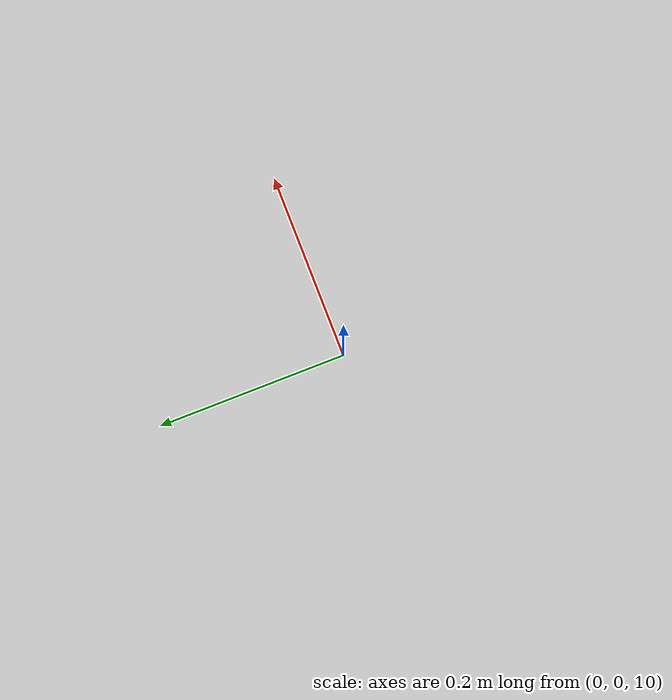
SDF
<?xml version="1.0" encoding="UTF-8"?>
<sdf version="1.9">
  <world name="aruco_upward">
    <physics type="ode">
      <max_step_size>0.004</max_step_size>
      <real_time_factor>1.0</real_time_factor>
      <real_time_update_rate>250</real_time_update_rate>
    </physics>
    <plugin name="gz::sim::systems::Physics" filename="gz-sim-physics-system"/>
    <plugin name="gz::sim::systems::UserCommands" filename="gz-sim-user-commands-system"/>
    <plugin name="gz::sim::systems::SceneBroadcaster" filename="gz-sim-scene-broadcaster-system"/>
    <plugin name="gz::sim::systems::Contact" filename="gz-sim-contact-system"/>
    <plugin name="gz::sim::systems::Imu" filename="gz-sim-imu-system"/>
    <plugin name="gz::sim::systems::AirPressure" filename="gz-sim-air-pressure-system"/>
    <plugin name="gz::sim::systems::ApplyLinkWrench" filename="gz-sim-apply-link-wrench-system"/>
    <plugin name="gz::sim::systems::NavSat" filename="gz-sim-navsat-system"/>
    <plugin name="gz::sim::systems::Sensors" filename="gz-sim-sensors-system">
      <render_engine>ogre2</render_engine>
    </plugin>
    <plugin name="custom::OpticalFlowSystem" filename="libOpticalFlowSystem.so" />
    <gui fullscreen="false">
      <!-- 3D scene -->
      <plugin filename="MinimalScene" name="3D View">
        <gz-gui>
          <title>3D View</title>
          <property type="bool" key="showTitleBar">false</property>
          <property type="string" key="state">docked</property>
        </gz-gui>
        <engine>ogre2</engine>
        <scene>scene</scene>
        <ambient_light>0.4 0.4 0.4</ambient_light>
        <background_color>0.8 0.8 0.8</background_color>
        <camera_pose>-6 0 6 0 0.5 0</camera_pose>
        <camera_clip>
          <near>0.25</near>
          <far>25000</far>
        </camera_clip>
      </plugin>
      <!-- Plugins that add functionality to the scene -->
      <plugin filename="EntityContextMenuPlugin" name="Entity context menu">
        <gz-gui>
          <property key="state" type="string">floating</property>
          <property key="width" type="double">5</property>
          <property key="height" type="double">5</property>
          <property key="showTitleBar" type="bool">false</property>
        </gz-gui>
      </plugin>
      <plugin filename="GzSceneManager" name="Scene Manager">
        <gz-gui>
          <property key="resizable" type="bool">false</property>
          <property key="width" type="double">5</property>
          <property key="height" type="double">5</property>
          <property key="state" type="string">floating</property>
          <property key="showTitleBar" type="bool">false</property>
        </gz-gui>
      </plugin>
      <plugin filename="InteractiveViewControl" name="Interactive view control">
        <gz-gui>
          <property key="resizable" type="bool">false</property>
          <property key="width" type="double">5</property>
          <property key="height" type="double">5</property>
          <property key="state" type="string">floating</property>
          <property key="showTitleBar" type="bool">false</property>
        </gz-gui>
      </plugin>
      <plugin filename="CameraTracking" name="Camera Tracking">
        <gz-gui>
          <property key="resizable" type="bool">false</property>
          <property key="width" type="double">5</property>
          <property key="height" type="double">5</property>
          <property key="state" type="string">floating</property>
          <property key="showTitleBar" type="bool">false</property>
        </gz-gui>
      </plugin>
      <plugin filename="MarkerManager" name="Marker manager">
        <gz-gui>
          <property key="resizable" type="bool">false</property>
          <property key="width" type="double">5</property>
          <property key="height" type="double">5</property>
          <property key="state" type="string">floating</property>
          <property key="showTitleBar" type="bool">false</property>
        </gz-gui>
      </plugin>
      <plugin filename="SelectEntities" name="Select Entities">
        <gz-gui>
          <anchors target="Select entities">
            <line own="right" target="right"/>
            <line own="top" target="top"/>
          </anchors>
          <property key="resizable" type="bool">false</property>
          <property key="width" type="double">5</property>
          <property key="height" type="double">5</property>
          <property key="state" type="string">floating</property>
          <property key="showTitleBar" type="bool">false</property>
        </gz-gui>
      </plugin>
      <plugin filename="VisualizationCapabilities" name="Visualization Capabilities">
        <gz-gui>
          <property key="resizable" type="bool">false</property>
          <property key="width" type="double">5</property>
          <property key="height" type="double">5</property>
          <property key="state" type="string">floating</property>
          <property key="showTitleBar" type="bool">false</property>
        </gz-gui>
      </plugin>
      <plugin filename="Spawn" name="Spawn Entities">
        <gz-gui>
          <anchors target="Select entities">
            <line own="right" target="right"/>
            <line own="top" target="top"/>
          </anchors>
          <property key="resizable" type="bool">false</property>
          <property key="width" type="double">5</property>
          <property key="height" type="double">5</property>
          <property key="state" type="string">floating</property>
          <property key="showTitleBar" type="bool">false</property>
        </gz-gui>
      </plugin>
      <plugin name="World control" filename="WorldControl">
        <gz-gui>
          <title>World control</title>
          <property type="bool" key="showTitleBar">0</property>
          <property type="bool" key="resizable">0</property>
          <property type="double" key="height">72</property>
          <property type="double" key="width">121</property>
          <property type="double" key="z">1</property>
          <property type="string" key="state">floating</property>
          <anchors target="3D View">
            <line own="left" target="left"/>
            <line own="bottom" target="bottom"/>
          </anchors>
        </gz-gui>
        <play_pause>1</play_pause>
        <step>1</step>
        <start_paused>1</start_paused>
      </plugin>
      <plugin name="World stats" filename="WorldStats">
        <gz-gui>
          <title>World stats</title>
          <property type="bool" key="showTitleBar">0</property>
          <property type="bool" key="resizable">0</property>
          <property type="double" key="height">110</property>
          <property type="double" key="width">290</property>
          <property type="double" key="z">1</property>
          <property type="string" key="state">floating</property>
          <anchors target="3D View">
            <line own="right" target="right"/>
            <line own="bottom" target="bottom"/>
          </anchors>
        </gz-gui>
        <sim_time>1</sim_time>
        <real_time>1</real_time>
        <real_time_factor>1</real_time_factor>
        <iterations>1</iterations>
      </plugin>
      <plugin name="Entity tree" filename="EntityTree"/>
    </gui>
    <gravity>0 0 -9.8</gravity>
    <magnetic_field>6e-06 2.3e-05 -4.2e-05</magnetic_field>
    <atmosphere type="adiabatic"/>
    <scene>
      <grid>false</grid>
      <ambient>0.4 0.4 0.4 1</ambient>
      <background>0.7 0.7 0.7 1</background>
      <shadows>true</shadows>
    </scene>
    <model name="ground_plane">
      <static>true</static>
      <link name="link">
        <collision name="collision">
          <geometry>
            <plane>
              <normal>0 0 1</normal>
              <size>1 1</size>
            </plane>
          </geometry>
          <surface>
            <friction>
              <ode/>
            </friction>
            <bounce/>
            <contact/>
          </surface>
        </collision>
        <visual name="visual">
          <geometry>
            <plane>
              <normal>0 0 1</normal>
              <size>50 50</size>
            </plane>
          </geometry>
          <material>
            <ambient>0.8 0.8 0.8 1</ambient>
            <diffuse>0.8 0.8 0.8 1</diffuse>
            <specular>0.8 0.8 0.8 1</specular>
            <pbr>
              <metal>
                <albedo_map>model://arucotag/tiled_meseeks_small.png</albedo_map>
              </metal>
            </pbr>
          </material>
        </visual>
        <pose>0 0 0 0 -0 0</pose>
        <inertial>
          <pose>0 0 0 0 -0 0</pose>
          <mass>1</mass>
          <inertia>
            <ixx>1</ixx>
            <ixy>0</ixy>
            <ixz>0</ixz>
            <iyy>1</iyy>
            <iyz>0</iyz>
            <izz>1</izz>
          </inertia>
        </inertial>
        <enable_wind>false</enable_wind>
      </link>
      <pose>0 0 0 0 -0 0</pose>
      <self_collide>false</self_collide>
    </model>
    <model name="ceiling_plane">
      <static>true</static>
      <link name="link">
        <collision name="collision">
          <geometry>
            <plane>
              <normal>0 0 1</normal>
              <size>1 1</size>
            </plane>
          </geometry>
          <surface>
            <friction>
              <ode/>
            </friction>
            <bounce/>
            <contact/>
          </surface>
        </collision>
        <visual name="visual">
          <geometry>
            <plane>
              <normal>0 0 1</normal>
              <size>50 50</size>
            </plane>
          </geometry>
          <material>
            <ambient>0.8 0.8 0.8 1</ambient>
            <diffuse>0.8 0.8 0.8 1</diffuse>
            <specular>0.8 0.8 0.8 1</specular>
            <pbr>
              <metal>
                <albedo_map>model://arucotag/tiled_meseeks_small.png</albedo_map>
              </metal>
            </pbr>
          </material>
        </visual>
        <pose>0 0 0 0 -0 0</pose>
        <inertial>
          <pose>0 0 0 0 -0 0</pose>
          <mass>1</mass>
          <inertia>
            <ixx>1</ixx>
            <ixy>0</ixy>
            <ixz>0</ixz>
            <iyy>1</iyy>
            <iyz>0</iyz>
            <izz>1</izz>
          </inertia>
        </inertial>
        <enable_wind>false</enable_wind>
      </link>
      <pose>0 0 10 3.14 -0 0</pose>
      <self_collide>false</self_collide>
    </model>
    <light name="sunUTC" type="directional">
      <pose>0 0 500 0 -0 0</pose>
      <cast_shadows>true</cast_shadows>
      <intensity>1</intensity>
      <direction>0.001 0.625 -0.78</direction>
      <diffuse>0.904 0.904 0.904 1</diffuse>
      <specular>0.271 0.271 0.271 1</specular>
      <attenuation>
        <range>2000</range>
        <linear>0</linear>
        <constant>1</constant>
        <quadratic>0</quadratic>
      </attenuation>
      <spot>
        <inner_angle>0</inner_angle>
        <outer_angle>0</outer_angle>
        <falloff>0</falloff>
      </spot>
    </light>
    <spherical_coordinates>
      <surface_model>EARTH_WGS84</surface_model>
      <world_frame_orientation>ENU</world_frame_orientation>
      <latitude_deg>47.397971057728974</latitude_deg>
      <longitude_deg> 8.546163739800146</longitude_deg>
      <elevation>0</elevation>
    </spherical_coordinates>

    <include>
      <uri>model://arucotag</uri>
      <pose>0 0 10 3.14 0 0 </pose>
    </include>
  </world>
</sdf>

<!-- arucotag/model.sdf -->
<sdf version='1.9'>
  <model name='arucotag'>
    <static>true</static>
    <pose>0 0 0.001 0 0 0</pose>
    <link name='base'>
      <visual name='background_visual'>
        <geometry>
          <plane>
            <normal>0 0 1</normal>
            <size>0.5 0.5</size>
          </plane>
        </geometry>
        <material>
          <diffuse>1 1 1 1</diffuse>
          <specular>0.2 0.2 0.2 1</specular>
        </material>
      </visual>
      <visual name='tag_0_visual'>
        <pose>0.17 0.17 0.0002 0 0 0</pose>
        <geometry>
          <plane>
            <normal>0 0 1</normal>
            <size>0.14 0.14</size>
          </plane>
        </geometry>
        <material>
          <diffuse>1 1 1 1</diffuse>
          <specular>0.4 0.4 0.4 1</specular>
          <pbr>
            <metal>
              <albedo_map>model://arucotag/aruco_0.png</albedo_map>
            </metal>
          </pbr>
        </material>
      </visual>
      <visual name='tag_1_visual'>
        <pose>-0.17 0.17 0.0002 0 0 0</pose>
        <geometry>
          <plane>
            <normal>0 0 1</normal>
            <size>0.14 0.14</size>
          </plane>
        </geometry>
        <material>
          <diffuse>1 1 1 1</diffuse>
          <specular>0.4 0.4 0.4 1</specular>
          <pbr>
            <metal>
              <albedo_map>model://arucotag/aruco_1.png</albedo_map>
            </metal>
          </pbr>
        </material>
      </visual>
      <visual name='tag_2_visual'>
        <pose>-0.17 -0.17 0.0002 0 0 0</pose>
        <geometry>
          <plane>
            <normal>0 0 1</normal>
            <size>0.14 0.14</size>
          </plane>
        </geometry>
        <material>
          <diffuse>1 1 1 1</diffuse>
          <specular>0.4 0.4 0.4 1</specular>
          <pbr>
            <metal>
              <albedo_map>model://arucotag/aruco_2.png</albedo_map>
            </metal>
          </pbr>
        </material>
      </visual>
      <visual name='tag_3_visual'>
        <pose>0.17 -0.17 0.0002 0 0 0</pose>
        <geometry>
          <plane>
            <normal>0 0 1</normal>
            <size>0.14 0.14</size>
          </plane>
        </geometry>
        <material>
          <diffuse>1 1 1 1</diffuse>
          <specular>0.4 0.4 0.4 1</specular>
          <pbr>
            <metal>
              <albedo_map>model://arucotag/aruco_3.png</albedo_map>
            </metal>
          </pbr>
        </material>
      </visual>
      <visual name='tag_4_visual'>
        <pose>0.0 0.11 0.0002 0 0 0</pose>
        <geometry>
          <plane>
            <normal>0 0 1</normal>
            <size>0.07 0.07</size>
          </plane>
        </geometry>
        <material>
          <diffuse>1 1 1 1</diffuse>
          <specular>0.4 0.4 0.4 1</specular>
          <pbr>
            <metal>
              <albedo_map>model://arucotag/aruco_4.png</albedo_map>
            </metal>
          </pbr>
        </material>
      </visual>
      <visual name='tag_5_visual'>
        <pose>-0.11 0.0 0.0002 0 0 0</pose>
        <geometry>
          <plane>
            <normal>0 0 1</normal>
            <size>0.07 0.07</size>
          </plane>
        </geometry>
        <material>
          <diffuse>1 1 1 1</diffuse>
          <specular>0.4 0.4 0.4 1</specular>
          <pbr>
            <metal>
              <albedo_map>model://arucotag/aruco_5.png</albedo_map>
            </metal>
          </pbr>
        </material>
      </visual>
      <visual name='tag_6_visual'>
        <pose>0.0 -0.11 0.0002 0 0 0</pose>
        <geometry>
          <plane>
            <normal>0 0 1</normal>
            <size>0.07 0.07</size>
          </plane>
        </geometry>
        <material>
          <diffuse>1 1 1 1</diffuse>
          <specular>0.4 0.4 0.4 1</specular>
          <pbr>
            <metal>
              <albedo_map>model://arucotag/aruco_6.png</albedo_map>
            </metal>
          </pbr>
        </material>
      </visual>
      <visual name='tag_7_visual'>
        <pose>0.11 0.0 0.0002 0 0 0</pose>
        <geometry>
          <plane>
            <normal>0 0 1</normal>
            <size>0.07 0.07</size>
          </plane>
        </geometry>
        <material>
          <diffuse>1 1 1 1</diffuse>
          <specular>0.4 0.4 0.4 1</specular>
          <pbr>
            <metal>
              <albedo_map>model://arucotag/aruco_7.png</albedo_map>
            </metal>
          </pbr>
        </material>
      </visual>
      <visual name='tag_8_visual'>
        <pose>0.0 0.045 0.0002 0 0 0</pose>
        <geometry>
          <plane>
            <normal>0 0 1</normal>
            <size>0.025 0.025</size>
          </plane>
        </geometry>
        <material>
          <diffuse>1 1 1 1</diffuse>
          <specular>0.4 0.4 0.4 1</specular>
          <pbr>
            <metal>
              <albedo_map>model://arucotag/aruco_8.png</albedo_map>
            </metal>
          </pbr>
        </material>
      </visual>
      <visual name='tag_9_visual'>
        <pose>-0.045 0.0 0.0002 0 0 0</pose>
        <geometry>
          <plane>
            <normal>0 0 1</normal>
            <size>0.025 0.025</size>
          </plane>
        </geometry>
        <material>
          <diffuse>1 1 1 1</diffuse>
          <specular>0.4 0.4 0.4 1</specular>
          <pbr>
            <metal>
              <albedo_map>model://arucotag/aruco_9.png</albedo_map>
            </metal>
          </pbr>
        </material>
      </visual>
      <visual name='tag_10_visual'>
        <pose>0.0 -0.045 0.0002 0 0 0</pose>
        <geometry>
          <plane>
            <normal>0 0 1</normal>
            <size>0.025 0.025</size>
          </plane>
        </geometry>
        <material>
          <diffuse>1 1 1 1</diffuse>
          <specular>0.4 0.4 0.4 1</specular>
          <pbr>
            <metal>
              <albedo_map>model://arucotag/aruco_10.png</albedo_map>
            </metal>
          </pbr>
        </material>
      </visual>
      <visual name='tag_11_visual'>
        <pose>0.045 0.0 0.0002 0 0 0</pose>
        <geometry>
          <plane>
            <normal>0 0 1</normal>
            <size>0.025 0.025</size>
          </plane>
        </geometry>
        <material>
          <diffuse>1 1 1 1</diffuse>
          <specular>0.4 0.4 0.4 1</specular>
          <pbr>
            <metal>
              <albedo_map>model://arucotag/aruco_11.png</albedo_map>
            </metal>
          </pbr>
        </material>
      </visual>
      <visual name='tag_12_visual'>
        <pose>0.0 0.0 0.0002 0 0 0</pose>
        <geometry>
          <plane>
            <normal>0 0 1</normal>
            <size>0.018 0.018</size>
          </plane>
        </geometry>
        <material>
          <diffuse>1 1 1 1</diffuse>
          <specular>0.4 0.4 0.4 1</specular>
          <pbr>
            <metal>
              <albedo_map>model://arucotag/aruco_12.png</albedo_map>
            </metal>
          </pbr>
        </material>
      </visual>
      <!-- Small, flat drawing of the positive board axes.  It sits in the
           marker-free gap between the two large +Y-side tags. -->
      <visual name='board_positive_axes_drawing'>
        <pose>0.045 0.190 0.0005 0 0 0</pose>
        <geometry>
          <plane>
            <normal>0 0 1</normal>
            <size>0.042 0.042</size>
          </plane>
        </geometry>
        <material>
          <diffuse>1 1 1 1</diffuse>
          <specular>0 0 0 1</specular>
          <pbr>
            <metal>
              <albedo_map>model://arucotag/board_axes_xy.png</albedo_map>
            </metal>
          </pbr>
        </material>
      </visual>
    </link>
  </model>
</sdf>
